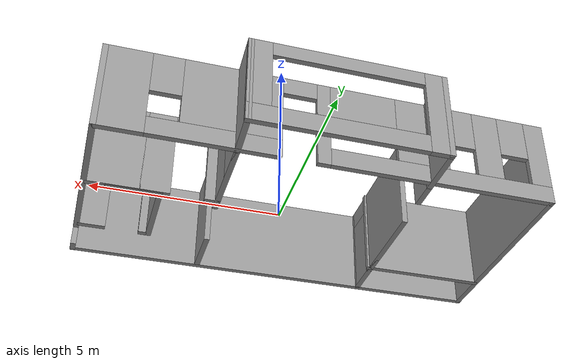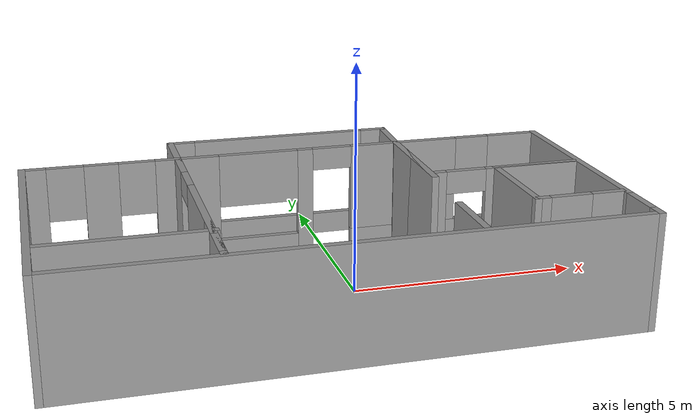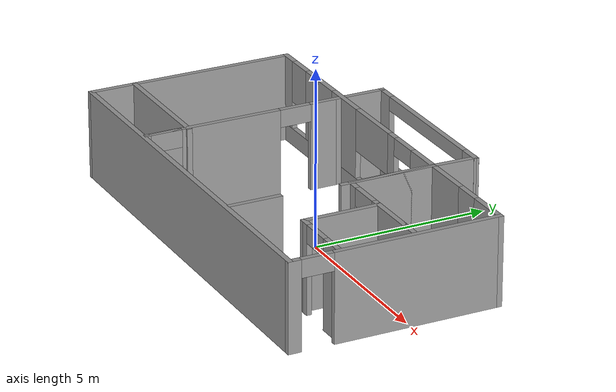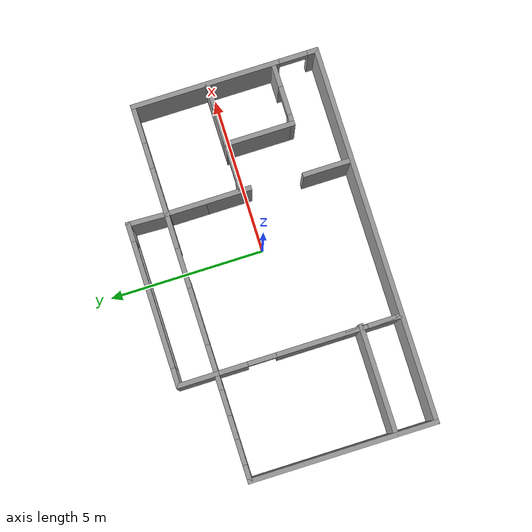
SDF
<?xml version='1.0'?>
<sdf version='1.7'>
  <model name='kolea_kv'>
    <pose>-0.777549 0.194716 0 0 -0 0</pose>
    <link name='Wall_10'>
      <pose>-2.575 -0.626105 0 0 -0 1.5708</pose>
      <visual name='Wall_10_Visual_0'>
        <pose>-2.7945 0 1.25 0 -0 0</pose>
        <geometry>
          <box>
            <size>0.160992 0.15 2.5</size>
          </box>
        </geometry>
        <material>
          <script>
            <uri>file://media/materials/scripts/gazebo.material</uri>
            <name>Gazebo/Grey</name>
          </script>
          <ambient>1 1 1 1</ambient>
        </material>
        <meta>
          <layer>0</layer>
        </meta>
      </visual>
      <collision name='Wall_10_Collision_0'>
        <geometry>
          <box>
            <size>0.160992 0.15 2.5</size>
          </box>
        </geometry>
        <pose>-2.7945 0 1.25 0 -0 0</pose>
      </collision>
      <visual name='Wall_10_Visual_1'>
        <pose>-0.375394 0 1.25 0 -0 0</pose>
        <geometry>
          <box>
            <size>2.87723 0.15 2.5</size>
          </box>
        </geometry>
        <material>
          <script>
            <uri>file://media/materials/scripts/gazebo.material</uri>
            <name>Gazebo/Grey</name>
          </script>
          <ambient>1 1 1 1</ambient>
        </material>
        <meta>
          <layer>0</layer>
        </meta>
      </visual>
      <collision name='Wall_10_Collision_1'>
        <geometry>
          <box>
            <size>2.87723 0.15 2.5</size>
          </box>
        </geometry>
        <pose>-0.375394 0 1.25 0 -0 0</pose>
      </collision>
      <visual name='Wall_10_Visual_2'>
        <pose>2.41911 0 1.25 0 -0 0</pose>
        <geometry>
          <box>
            <size>0.91178 0.15 2.5</size>
          </box>
        </geometry>
        <material>
          <script>
            <uri>file://media/materials/scripts/gazebo.material</uri>
            <name>Gazebo/Grey</name>
          </script>
          <ambient>1 1 1 1</ambient>
        </material>
        <meta>
          <layer>0</layer>
        </meta>
      </visual>
      <collision name='Wall_10_Collision_2'>
        <geometry>
          <box>
            <size>0.91178 0.15 2.5</size>
          </box>
        </geometry>
        <pose>2.41911 0 1.25 0 -0 0</pose>
      </collision>
      <visual name='Wall_10_Visual_3'>
        <pose>-2.26401 0 2.25 0 -0 0</pose>
        <geometry>
          <box>
            <size>0.9 0.15 0.5</size>
          </box>
        </geometry>
        <material>
          <script>
            <uri>file://media/materials/scripts/gazebo.material</uri>
            <name>Gazebo/Grey</name>
          </script>
          <ambient>1 1 1 1</ambient>
        </material>
        <meta>
          <layer>0</layer>
        </meta>
      </visual>
      <collision name='Wall_10_Collision_3'>
        <geometry>
          <box>
            <size>0.9 0.15 0.5</size>
          </box>
        </geometry>
        <pose>-2.26401 0 2.25 0 -0 0</pose>
      </collision>
      <visual name='Wall_10_Visual_4'>
        <pose>1.51322 0 2.25 0 -0 0</pose>
        <geometry>
          <box>
            <size>0.9 0.15 0.5</size>
          </box>
        </geometry>
        <material>
          <script>
            <uri>file://media/materials/scripts/gazebo.material</uri>
            <name>Gazebo/Grey</name>
          </script>
          <ambient>1 1 1 1</ambient>
        </material>
        <meta>
          <layer>0</layer>
        </meta>
      </visual>
      <collision name='Wall_10_Collision_4'>
        <geometry>
          <box>
            <size>0.9 0.15 0.5</size>
          </box>
        </geometry>
        <pose>1.51322 0 2.25 0 -0 0</pose>
      </collision>
    </link>
    <link name='Wall_19'>
      <collision name='Wall_19_Collision'>
        <geometry>
          <box>
            <size>3.5 0.15 2.5</size>
          </box>
        </geometry>
        <pose>0 0 1.25 0 -0 0</pose>
      </collision>
      <visual name='Wall_19_Visual'>
        <pose>0 0 1.25 0 -0 0</pose>
        <geometry>
          <box>
            <size>3.5 0.15 2.5</size>
          </box>
        </geometry>
        <material>
          <script>
            <uri>file://media/materials/scripts/gazebo.material</uri>
            <name>Gazebo/Grey</name>
          </script>
          <ambient>1 1 1 1</ambient>
        </material>
        <meta>
          <layer>0</layer>
        </meta>
      </visual>
      <pose>-4.1968 -2.25171 0 0 -0 0</pose>
    </link>
    <link name='Wall_21'>
      <pose>4.90729 -2.14531 0 0 -0 3.14159</pose>
      <visual name='Wall_21_Visual_0'>
        <pose>-0.628896 0 1.25 0 -0 0</pose>
        <geometry>
          <box>
            <size>0.742209 0.15 2.5</size>
          </box>
        </geometry>
        <material>
          <script>
            <uri>file://media/materials/scripts/gazebo.material</uri>
            <name>Gazebo/Grey</name>
          </script>
          <ambient>1 1 1 1</ambient>
        </material>
        <meta>
          <layer>0</layer>
        </meta>
      </visual>
      <collision name='Wall_21_Collision_0'>
        <geometry>
          <box>
            <size>0.742209 0.15 2.5</size>
          </box>
        </geometry>
        <pose>-0.628896 0 1.25 0 -0 0</pose>
      </collision>
      <visual name='Wall_21_Visual_1'>
        <pose>0.821104 0 1.25 0 -0 0</pose>
        <geometry>
          <box>
            <size>0.357791 0.15 2.5</size>
          </box>
        </geometry>
        <material>
          <script>
            <uri>file://media/materials/scripts/gazebo.material</uri>
            <name>Gazebo/Grey</name>
          </script>
          <ambient>1 1 1 1</ambient>
        </material>
        <meta>
          <layer>0</layer>
        </meta>
      </visual>
      <collision name='Wall_21_Collision_1'>
        <geometry>
          <box>
            <size>0.357791 0.15 2.5</size>
          </box>
        </geometry>
        <pose>0.821104 0 1.25 0 -0 0</pose>
      </collision>
      <visual name='Wall_21_Visual_2'>
        <pose>0.192209 0 2.25 0 -0 0</pose>
        <geometry>
          <box>
            <size>0.9 0.15 0.5</size>
          </box>
        </geometry>
        <material>
          <script>
            <uri>file://media/materials/scripts/gazebo.material</uri>
            <name>Gazebo/Grey</name>
          </script>
          <ambient>1 1 1 1</ambient>
        </material>
        <meta>
          <layer>0</layer>
        </meta>
      </visual>
      <collision name='Wall_21_Collision_2'>
        <geometry>
          <box>
            <size>0.9 0.15 0.5</size>
          </box>
        </geometry>
        <pose>0.192209 0 2.25 0 -0 0</pose>
      </collision>
    </link>
    <link name='Wall_22'>
      <collision name='Wall_22_Collision'>
        <geometry>
          <box>
            <size>2.25 0.15 2.5</size>
          </box>
        </geometry>
        <pose>0 0 1.25 0 -0 0</pose>
      </collision>
      <visual name='Wall_22_Visual'>
        <pose>0 0 1.25 0 -0 0</pose>
        <geometry>
          <box>
            <size>2.25 0.15 2.5</size>
          </box>
        </geometry>
        <material>
          <script>
            <uri>file://media/materials/scripts/gazebo.material</uri>
            <name>Gazebo/Grey</name>
          </script>
          <ambient>1 1 1 1</ambient>
        </material>
        <meta>
          <layer>0</layer>
        </meta>
      </visual>
      <pose>3.98229 -1.09531 0 0 -0 1.5708</pose>
    </link>
    <link name='Wall_23'>
      <collision name='Wall_23_Collision'>
        <geometry>
          <box>
            <size>2 0.15 2.5</size>
          </box>
        </geometry>
        <pose>0 0 1.25 0 -0 0</pose>
      </collision>
      <visual name='Wall_23_Visual'>
        <pose>0 0 1.25 0 -0 0</pose>
        <geometry>
          <box>
            <size>2 0.15 2.5</size>
          </box>
        </geometry>
        <material>
          <script>
            <uri>file://media/materials/scripts/gazebo.material</uri>
            <name>Gazebo/Grey</name>
          </script>
          <ambient>1 1 1 1</ambient>
        </material>
        <meta>
          <layer>0</layer>
        </meta>
      </visual>
      <pose>4.90729 -0.045308 0 0 -0 0</pose>
    </link>
    <link name='Wall_25'>
      <pose>4.15729 -0.045308 0 0 -0 3.14159</pose>
      <visual name='Wall_25_Visual_0'>
        <pose>-0.66069 0 1.25 0 -0 0</pose>
        <geometry>
          <box>
            <size>2.17862 0.15 2.5</size>
          </box>
        </geometry>
        <material>
          <script>
            <uri>file://media/materials/scripts/gazebo.material</uri>
            <name>Gazebo/Grey</name>
          </script>
          <ambient>1 1 1 1</ambient>
        </material>
        <meta>
          <layer>0</layer>
        </meta>
      </visual>
      <collision name='Wall_25_Collision_0'>
        <geometry>
          <box>
            <size>2.17862 0.15 2.5</size>
          </box>
        </geometry>
        <pose>-0.66069 0 1.25 0 -0 0</pose>
      </collision>
      <visual name='Wall_25_Visual_1'>
        <pose>1.53931 0 1.25 0 -0 0</pose>
        <geometry>
          <box>
            <size>0.421381 0.15 2.5</size>
          </box>
        </geometry>
        <material>
          <script>
            <uri>file://media/materials/scripts/gazebo.material</uri>
            <name>Gazebo/Grey</name>
          </script>
          <ambient>1 1 1 1</ambient>
        </material>
        <meta>
          <layer>0</layer>
        </meta>
      </visual>
      <collision name='Wall_25_Collision_1'>
        <geometry>
          <box>
            <size>0.421381 0.15 2.5</size>
          </box>
        </geometry>
        <pose>1.53931 0 1.25 0 -0 0</pose>
      </collision>
      <visual name='Wall_25_Visual_2'>
        <pose>0.878619 0 2.25 0 -0 0</pose>
        <geometry>
          <box>
            <size>0.9 0.15 0.5</size>
          </box>
        </geometry>
        <material>
          <script>
            <uri>file://media/materials/scripts/gazebo.material</uri>
            <name>Gazebo/Grey</name>
          </script>
          <ambient>1 1 1 1</ambient>
        </material>
        <meta>
          <layer>0</layer>
        </meta>
      </visual>
      <collision name='Wall_25_Collision_2'>
        <geometry>
          <box>
            <size>0.9 0.15 0.5</size>
          </box>
        </geometry>
        <pose>0.878619 0 2.25 0 -0 0</pose>
      </collision>
    </link>
    <link name='Wall_26'>
      <collision name='Wall_26_Collision'>
        <geometry>
          <box>
            <size>2.5 0.15 2.5</size>
          </box>
        </geometry>
        <pose>0 0 1.25 0 -0 0</pose>
      </collision>
      <visual name='Wall_26_Visual'>
        <pose>0 0 1.25 0 -0 0</pose>
        <geometry>
          <box>
            <size>2.5 0.15 2.5</size>
          </box>
        </geometry>
        <material>
          <script>
            <uri>file://media/materials/scripts/gazebo.material</uri>
            <name>Gazebo/Grey</name>
          </script>
          <ambient>1 1 1 1</ambient>
        </material>
        <meta>
          <layer>0</layer>
        </meta>
      </visual>
      <pose>2.48229 1.12969 0 0 -0 1.5708</pose>
    </link>
    <link name='Wall_27'>
      <collision name='Wall_27_Collision'>
        <geometry>
          <box>
            <size>2.75 0.15 2.5</size>
          </box>
        </geometry>
        <pose>0 0 1.25 0 -0 0</pose>
      </collision>
      <visual name='Wall_27_Visual'>
        <pose>0 0 1.25 0 -0 0</pose>
        <geometry>
          <box>
            <size>2.75 0.15 2.5</size>
          </box>
        </geometry>
        <material>
          <script>
            <uri>file://media/materials/scripts/gazebo.material</uri>
            <name>Gazebo/Grey</name>
          </script>
          <ambient>1 1 1 1</ambient>
        </material>
        <meta>
          <layer>0</layer>
        </meta>
      </visual>
      <pose>2.48229 1.00469 0 0 -0 -1.5708</pose>
    </link>
    <link name='Wall_29'>
      <collision name='Wall_29_Collision'>
        <geometry>
          <box>
            <size>1.5 0.15 2.5</size>
          </box>
        </geometry>
        <pose>0 0 1.25 0 -0 0</pose>
      </collision>
      <visual name='Wall_29_Visual'>
        <pose>0 0 1.25 0 -0 0</pose>
        <geometry>
          <box>
            <size>1.5 0.15 2.5</size>
          </box>
        </geometry>
        <material>
          <script>
            <uri>file://media/materials/scripts/gazebo.material</uri>
            <name>Gazebo/Grey</name>
          </script>
          <ambient>1 1 1 1</ambient>
        </material>
        <meta>
          <layer>0</layer>
        </meta>
      </visual>
      <pose>2.37426 -2.71391 0 0 -0 -1.5708</pose>
    </link>
    <link name='Wall_3'>
      <collision name='Wall_3_Collision'>
        <geometry>
          <box>
            <size>6 0.15 2.5</size>
          </box>
        </geometry>
        <pose>0 0 1.25 0 -0 0</pose>
      </collision>
      <visual name='Wall_3_Visual'>
        <pose>0 0 1.25 0 -0 0</pose>
        <geometry>
          <box>
            <size>6 0.15 2.5</size>
          </box>
        </geometry>
        <material>
          <script>
            <uri>file://media/materials/scripts/gazebo.material</uri>
            <name>Gazebo/Grey</name>
          </script>
          <ambient>1 1 1 1</ambient>
        </material>
        <meta>
          <layer>0</layer>
        </meta>
      </visual>
      <pose>-5.925 -0.601474 0 0 -0 -1.5708</pose>
    </link>
    <link name='Wall_33'>
      <collision name='Wall_33_Collision'>
        <geometry>
          <box>
            <size>1.5 0.15 2.5</size>
          </box>
        </geometry>
        <pose>0 0 1.25 0 -0 0</pose>
      </collision>
      <visual name='Wall_33_Visual'>
        <pose>0 0 1.25 0 -0 0</pose>
        <geometry>
          <box>
            <size>1.5 0.15 2.5</size>
          </box>
        </geometry>
        <material>
          <script>
            <uri>file://media/materials/scripts/gazebo.material</uri>
            <name>Gazebo/Grey</name>
          </script>
          <ambient>1 1 1 1</ambient>
        </material>
        <meta>
          <layer>0</layer>
        </meta>
      </visual>
      <pose>-2.575 2.8489 0 0 -0 1.5708</pose>
    </link>
    <link name='Wall_37'>
      <pose>-0.025 3.52389 0 0 -0 0</pose>
      <visual name='Wall_37_Visual_0'>
        <pose>-2.30988 0 1.25 0 -0 0</pose>
        <geometry>
          <box>
            <size>0.630244 0.15 2.5</size>
          </box>
        </geometry>
        <material>
          <script>
            <uri>file://media/materials/scripts/gazebo.material</uri>
            <name>Gazebo/Grey</name>
          </script>
          <ambient>1 1 1 1</ambient>
        </material>
        <meta>
          <layer>0</layer>
        </meta>
      </visual>
      <collision name='Wall_37_Collision_0'>
        <geometry>
          <box>
            <size>0.630244 0.15 2.5</size>
          </box>
        </geometry>
        <pose>-2.30988 0 1.25 0 -0 0</pose>
      </collision>
      <visual name='Wall_37_Visual_1'>
        <pose>0.315122 0 0.25 0 -0 0</pose>
        <geometry>
          <box>
            <size>4.61976 0.15 0.5</size>
          </box>
        </geometry>
        <material>
          <script>
            <uri>file://media/materials/scripts/gazebo.material</uri>
            <name>Gazebo/Grey</name>
          </script>
          <ambient>1 1 1 1</ambient>
        </material>
        <meta>
          <layer>0</layer>
        </meta>
      </visual>
      <collision name='Wall_37_Collision_1'>
        <geometry>
          <box>
            <size>4.61976 0.15 0.5</size>
          </box>
        </geometry>
        <pose>0.315122 0 0.25 0 -0 0</pose>
      </collision>
      <visual name='Wall_37_Visual_2'>
        <pose>2.31512 0 1.5 0 -0 0</pose>
        <geometry>
          <box>
            <size>0.619756 0.15 2</size>
          </box>
        </geometry>
        <material>
          <script>
            <uri>file://media/materials/scripts/gazebo.material</uri>
            <name>Gazebo/Grey</name>
          </script>
          <ambient>1 1 1 1</ambient>
        </material>
        <meta>
          <layer>0</layer>
        </meta>
      </visual>
      <collision name='Wall_37_Collision_2'>
        <geometry>
          <box>
            <size>0.619756 0.15 2</size>
          </box>
        </geometry>
        <pose>2.31512 0 1.5 0 -0 0</pose>
      </collision>
      <visual name='Wall_37_Visual_3'>
        <pose>0.005244 0 2.3 0 -0 0</pose>
        <geometry>
          <box>
            <size>4 0.15 0.4</size>
          </box>
        </geometry>
        <material>
          <script>
            <uri>file://media/materials/scripts/gazebo.material</uri>
            <name>Gazebo/Grey</name>
          </script>
          <ambient>1 1 1 1</ambient>
        </material>
        <meta>
          <layer>0</layer>
        </meta>
      </visual>
      <collision name='Wall_37_Collision_3'>
        <geometry>
          <box>
            <size>4 0.15 0.4</size>
          </box>
        </geometry>
        <pose>0.005244 0 2.3 0 -0 0</pose>
      </collision>
    </link>
    <link name='Wall_38'>
      <collision name='Wall_38_Collision'>
        <geometry>
          <box>
            <size>1.36995 0.15 2.5</size>
          </box>
        </geometry>
        <pose>0 0 1.25 0 -0 0</pose>
      </collision>
      <visual name='Wall_38_Visual'>
        <pose>0 0 1.25 0 -0 0</pose>
        <geometry>
          <box>
            <size>1.36995 0.15 2.5</size>
          </box>
        </geometry>
        <material>
          <script>
            <uri>file://media/materials/scripts/gazebo.material</uri>
            <name>Gazebo/Grey</name>
          </script>
          <ambient>1 1 1 1</ambient>
        </material>
        <meta>
          <layer>0</layer>
        </meta>
      </visual>
      <pose>2.50364 2.91429 0 0 -0 -1.60581</pose>
    </link>
    <link name='Wall_4'>
      <collision name='Wall_4_Collision'>
        <geometry>
          <box>
            <size>12 0.15 2.5</size>
          </box>
        </geometry>
        <pose>0 0 1.25 0 -0 0</pose>
      </collision>
      <visual name='Wall_4_Visual'>
        <pose>0 0 1.25 0 -0 0</pose>
        <geometry>
          <box>
            <size>12 0.15 2.5</size>
          </box>
        </geometry>
        <material>
          <script>
            <uri>file://media/materials/scripts/gazebo.material</uri>
            <name>Gazebo/Grey</name>
          </script>
          <ambient>1 1 1 1</ambient>
        </material>
        <meta>
          <layer>0</layer>
        </meta>
      </visual>
      <pose>-0 -3.52647 0 0 -0 0</pose>
    </link>
    <link name='Wall_5'>
      <pose>5.925 -0.601474 0 0 -0 1.5708</pose>
      <visual name='Wall_5_Visual_0'>
        <pose>-2.81612 0 1.25 0 -0 0</pose>
        <geometry>
          <box>
            <size>0.367762 0.15 2.5</size>
          </box>
        </geometry>
        <material>
          <script>
            <uri>file://media/materials/scripts/gazebo.material</uri>
            <name>Gazebo/Grey</name>
          </script>
          <ambient>1 1 1 1</ambient>
        </material>
        <meta>
          <layer>0</layer>
        </meta>
      </visual>
      <collision name='Wall_5_Collision_0'>
        <geometry>
          <box>
            <size>0.367762 0.15 2.5</size>
          </box>
        </geometry>
        <pose>-2.81612 0 1.25 0 -0 0</pose>
      </collision>
      <visual name='Wall_5_Visual_1'>
        <pose>0.633881 0 1.25 0 -0 0</pose>
        <geometry>
          <box>
            <size>4.73224 0.15 2.5</size>
          </box>
        </geometry>
        <material>
          <script>
            <uri>file://media/materials/scripts/gazebo.material</uri>
            <name>Gazebo/Grey</name>
          </script>
          <ambient>1 1 1 1</ambient>
        </material>
        <meta>
          <layer>0</layer>
        </meta>
      </visual>
      <collision name='Wall_5_Collision_1'>
        <geometry>
          <box>
            <size>4.73224 0.15 2.5</size>
          </box>
        </geometry>
        <pose>0.633881 0 1.25 0 -0 0</pose>
      </collision>
      <visual name='Wall_5_Visual_2'>
        <pose>-2.18224 0 2.25 0 -0 0</pose>
        <geometry>
          <box>
            <size>0.9 0.15 0.5</size>
          </box>
        </geometry>
        <material>
          <script>
            <uri>file://media/materials/scripts/gazebo.material</uri>
            <name>Gazebo/Grey</name>
          </script>
          <ambient>1 1 1 1</ambient>
        </material>
        <meta>
          <layer>0</layer>
        </meta>
      </visual>
      <collision name='Wall_5_Collision_2'>
        <geometry>
          <box>
            <size>0.9 0.15 0.5</size>
          </box>
        </geometry>
        <pose>-2.18224 0 2.25 0 -0 0</pose>
      </collision>
    </link>
    <link name='Wall_6'>
      <pose>-0 2.32353 0 0 -0 3.14159</pose>
      <visual name='Wall_6_Visual_0'>
        <pose>-5.37134 0 1.25 0 -0 0</pose>
        <geometry>
          <box>
            <size>1.25732 0.15 2.5</size>
          </box>
        </geometry>
        <material>
          <script>
            <uri>file://media/materials/scripts/gazebo.material</uri>
            <name>Gazebo/Grey</name>
          </script>
          <ambient>1 1 1 1</ambient>
        </material>
        <meta>
          <layer>0</layer>
        </meta>
      </visual>
      <collision name='Wall_6_Collision_0'>
        <geometry>
          <box>
            <size>1.25732 0.15 2.5</size>
          </box>
        </geometry>
        <pose>-5.37134 0 1.25 0 -0 0</pose>
      </collision>
      <visual name='Wall_6_Visual_1'>
        <pose>-0.311645 0 1.25 0 -0 0</pose>
        <geometry>
          <box>
            <size>0.352413 0.15 2.5</size>
          </box>
        </geometry>
        <material>
          <script>
            <uri>file://media/materials/scripts/gazebo.material</uri>
            <name>Gazebo/Grey</name>
          </script>
          <ambient>1 1 1 1</ambient>
        </material>
        <meta>
          <layer>0</layer>
        </meta>
      </visual>
      <collision name='Wall_6_Collision_1'>
        <geometry>
          <box>
            <size>0.352413 0.15 2.5</size>
          </box>
        </geometry>
        <pose>-0.311645 0 1.25 0 -0 0</pose>
      </collision>
      <visual name='Wall_6_Visual_2'>
        <pose>-3.06526 0 0.25 0 -0 0</pose>
        <geometry>
          <box>
            <size>3.35482 0.15 0.5</size>
          </box>
        </geometry>
        <material>
          <script>
            <uri>file://media/materials/scripts/gazebo.material</uri>
            <name>Gazebo/Grey</name>
          </script>
          <ambient>1 1 1 1</ambient>
        </material>
        <meta>
          <layer>0</layer>
        </meta>
      </visual>
      <collision name='Wall_6_Collision_2'>
        <geometry>
          <box>
            <size>3.35482 0.15 0.5</size>
          </box>
        </geometry>
        <pose>-3.06526 0 0.25 0 -0 0</pose>
      </collision>
      <visual name='Wall_6_Visual_3'>
        <pose>2.93228 0 0.25 0 -0 0</pose>
        <geometry>
          <box>
            <size>6.13544 0.15 0.5</size>
          </box>
        </geometry>
        <material>
          <script>
            <uri>file://media/materials/scripts/gazebo.material</uri>
            <name>Gazebo/Grey</name>
          </script>
          <ambient>1 1 1 1</ambient>
        </material>
        <meta>
          <layer>0</layer>
        </meta>
      </visual>
      <collision name='Wall_6_Collision_3'>
        <geometry>
          <box>
            <size>6.13544 0.15 0.5</size>
          </box>
        </geometry>
        <pose>2.93228 0 0.25 0 -0 0</pose>
      </collision>
      <visual name='Wall_6_Visual_4'>
        <pose>-2.66526 0 1.5 0 -0 0</pose>
        <geometry>
          <box>
            <size>2.55483 0.15 2</size>
          </box>
        </geometry>
        <material>
          <script>
            <uri>file://media/materials/scripts/gazebo.material</uri>
            <name>Gazebo/Grey</name>
          </script>
          <ambient>1 1 1 1</ambient>
        </material>
        <meta>
          <layer>0</layer>
        </meta>
      </visual>
      <collision name='Wall_6_Collision_4'>
        <geometry>
          <box>
            <size>2.55483 0.15 2</size>
          </box>
        </geometry>
        <pose>-2.66526 0 1.5 0 -0 0</pose>
      </collision>
      <visual name='Wall_6_Visual_5'>
        <pose>-2.66526 0 1.5 0 -0 0</pose>
        <geometry>
          <box>
            <size>2.55483 0.15 2</size>
          </box>
        </geometry>
        <material>
          <script>
            <uri>file://media/materials/scripts/gazebo.material</uri>
            <name>Gazebo/Grey</name>
          </script>
          <ambient>1 1 1 1</ambient>
        </material>
        <meta>
          <layer>0</layer>
        </meta>
      </visual>
      <collision name='Wall_6_Collision_5'>
        <geometry>
          <box>
            <size>2.55483 0.15 2</size>
          </box>
        </geometry>
        <pose>-2.66526 0 1.5 0 -0 0</pose>
      </collision>
      <visual name='Wall_6_Visual_6'>
        <pose>2.37117 0 1.5 0 -0 0</pose>
        <geometry>
          <box>
            <size>1.41322 0.15 2</size>
          </box>
        </geometry>
        <material>
          <script>
            <uri>file://media/materials/scripts/gazebo.material</uri>
            <name>Gazebo/Grey</name>
          </script>
          <ambient>1 1 1 1</ambient>
        </material>
        <meta>
          <layer>0</layer>
        </meta>
      </visual>
      <collision name='Wall_6_Collision_6'>
        <geometry>
          <box>
            <size>1.41322 0.15 2</size>
          </box>
        </geometry>
        <pose>2.37117 0 1.5 0 -0 0</pose>
      </collision>
      <visual name='Wall_6_Visual_7'>
        <pose>4.24919 0 1.5 0 -0 0</pose>
        <geometry>
          <box>
            <size>0.742811 0.15 2</size>
          </box>
        </geometry>
        <material>
          <script>
            <uri>file://media/materials/scripts/gazebo.material</uri>
            <name>Gazebo/Grey</name>
          </script>
          <ambient>1 1 1 1</ambient>
        </material>
        <meta>
          <layer>0</layer>
        </meta>
      </visual>
      <collision name='Wall_6_Collision_7'>
        <geometry>
          <box>
            <size>0.742811 0.15 2</size>
          </box>
        </geometry>
        <pose>4.24919 0 1.5 0 -0 0</pose>
      </collision>
      <visual name='Wall_6_Visual_8'>
        <pose>5.7103 0 1.5 0 -0 0</pose>
        <geometry>
          <box>
            <size>0.579407 0.15 2</size>
          </box>
        </geometry>
        <material>
          <script>
            <uri>file://media/materials/scripts/gazebo.material</uri>
            <name>Gazebo/Grey</name>
          </script>
          <ambient>1 1 1 1</ambient>
        </material>
        <meta>
          <layer>0</layer>
        </meta>
      </visual>
      <collision name='Wall_6_Collision_8'>
        <geometry>
          <box>
            <size>0.579407 0.15 2</size>
          </box>
        </geometry>
        <pose>5.7103 0 1.5 0 -0 0</pose>
      </collision>
      <visual name='Wall_6_Visual_9'>
        <pose>-4.34268 0 1.9 0 -0 0</pose>
        <geometry>
          <box>
            <size>0.8 0.15 1.2</size>
          </box>
        </geometry>
        <material>
          <script>
            <uri>file://media/materials/scripts/gazebo.material</uri>
            <name>Gazebo/Grey</name>
          </script>
          <ambient>1 1 1 1</ambient>
        </material>
        <meta>
          <layer>0</layer>
        </meta>
      </visual>
      <collision name='Wall_6_Collision_9'>
        <geometry>
          <box>
            <size>0.8 0.15 1.2</size>
          </box>
        </geometry>
        <pose>-4.34268 0 1.9 0 -0 0</pose>
      </collision>
      <visual name='Wall_6_Visual_10'>
        <pose>0.764561 0 1.9 0 -0 0</pose>
        <geometry>
          <box>
            <size>1.8 0.15 1.2</size>
          </box>
        </geometry>
        <material>
          <script>
            <uri>file://media/materials/scripts/gazebo.material</uri>
            <name>Gazebo/Grey</name>
          </script>
          <ambient>1 1 1 1</ambient>
        </material>
        <meta>
          <layer>0</layer>
        </meta>
      </visual>
      <collision name='Wall_6_Collision_10'>
        <geometry>
          <box>
            <size>1.8 0.15 1.2</size>
          </box>
        </geometry>
        <pose>0.764561 0 1.9 0 -0 0</pose>
      </collision>
      <visual name='Wall_6_Visual_11'>
        <pose>3.47778 0 1.9 0 -0 0</pose>
        <geometry>
          <box>
            <size>0.8 0.15 1.2</size>
          </box>
        </geometry>
        <material>
          <script>
            <uri>file://media/materials/scripts/gazebo.material</uri>
            <name>Gazebo/Grey</name>
          </script>
          <ambient>1 1 1 1</ambient>
        </material>
        <meta>
          <layer>0</layer>
        </meta>
      </visual>
      <collision name='Wall_6_Collision_11'>
        <geometry>
          <box>
            <size>0.8 0.15 1.2</size>
          </box>
        </geometry>
        <pose>3.47778 0 1.9 0 -0 0</pose>
      </collision>
      <visual name='Wall_6_Visual_12'>
        <pose>5.02059 0 1.9 0 -0 0</pose>
        <geometry>
          <box>
            <size>0.8 0.15 1.2</size>
          </box>
        </geometry>
        <material>
          <script>
            <uri>file://media/materials/scripts/gazebo.material</uri>
            <name>Gazebo/Grey</name>
          </script>
          <ambient>1 1 1 1</ambient>
        </material>
        <meta>
          <layer>0</layer>
        </meta>
      </visual>
      <collision name='Wall_6_Collision_12'>
        <geometry>
          <box>
            <size>0.8 0.15 1.2</size>
          </box>
        </geometry>
        <pose>5.02059 0 1.9 0 -0 0</pose>
      </collision>
      <visual name='Wall_6_Visual_13'>
        <pose>-0.937851 0 2.25 0 -0 0</pose>
        <geometry>
          <box>
            <size>0.9 0.15 0.5</size>
          </box>
        </geometry>
        <material>
          <script>
            <uri>file://media/materials/scripts/gazebo.material</uri>
            <name>Gazebo/Grey</name>
          </script>
          <ambient>1 1 1 1</ambient>
        </material>
        <meta>
          <layer>0</layer>
        </meta>
      </visual>
      <collision name='Wall_6_Collision_13'>
        <geometry>
          <box>
            <size>0.9 0.15 0.5</size>
          </box>
        </geometry>
        <pose>-0.937851 0 2.25 0 -0 0</pose>
      </collision>
      <visual name='Wall_6_Visual_14'>
        <pose>-0.937851 0 2.25 0 -0 0</pose>
        <geometry>
          <box>
            <size>0.9 0.15 0.5</size>
          </box>
        </geometry>
        <material>
          <script>
            <uri>file://media/materials/scripts/gazebo.material</uri>
            <name>Gazebo/Grey</name>
          </script>
          <ambient>1 1 1 1</ambient>
        </material>
        <meta>
          <layer>0</layer>
        </meta>
      </visual>
      <collision name='Wall_6_Collision_14'>
        <geometry>
          <box>
            <size>0.9 0.15 0.5</size>
          </box>
        </geometry>
        <pose>-0.937851 0 2.25 0 -0 0</pose>
      </collision>
    </link>
    <link name='Wall_9'>
      <collision name='Wall_9_Collision'>
        <geometry>
          <box>
            <size>1.75 0.15 2.5</size>
          </box>
        </geometry>
        <pose>0 0 1.25 0 -0 0</pose>
      </collision>
      <visual name='Wall_9_Visual'>
        <pose>0 0 1.25 0 -0 0</pose>
        <geometry>
          <box>
            <size>1.75 0.15 2.5</size>
          </box>
        </geometry>
        <material>
          <script>
            <uri>file://media/materials/scripts/gazebo.material</uri>
            <name>Gazebo/Grey</name>
          </script>
          <ambient>1 1 1 1</ambient>
        </material>
        <meta>
          <layer>0</layer>
        </meta>
      </visual>
      <pose>-2.575 -2.6261 0 0 -0 -1.5708</pose>
    </link>
    <static>1</static>
  </model>
</sdf>
